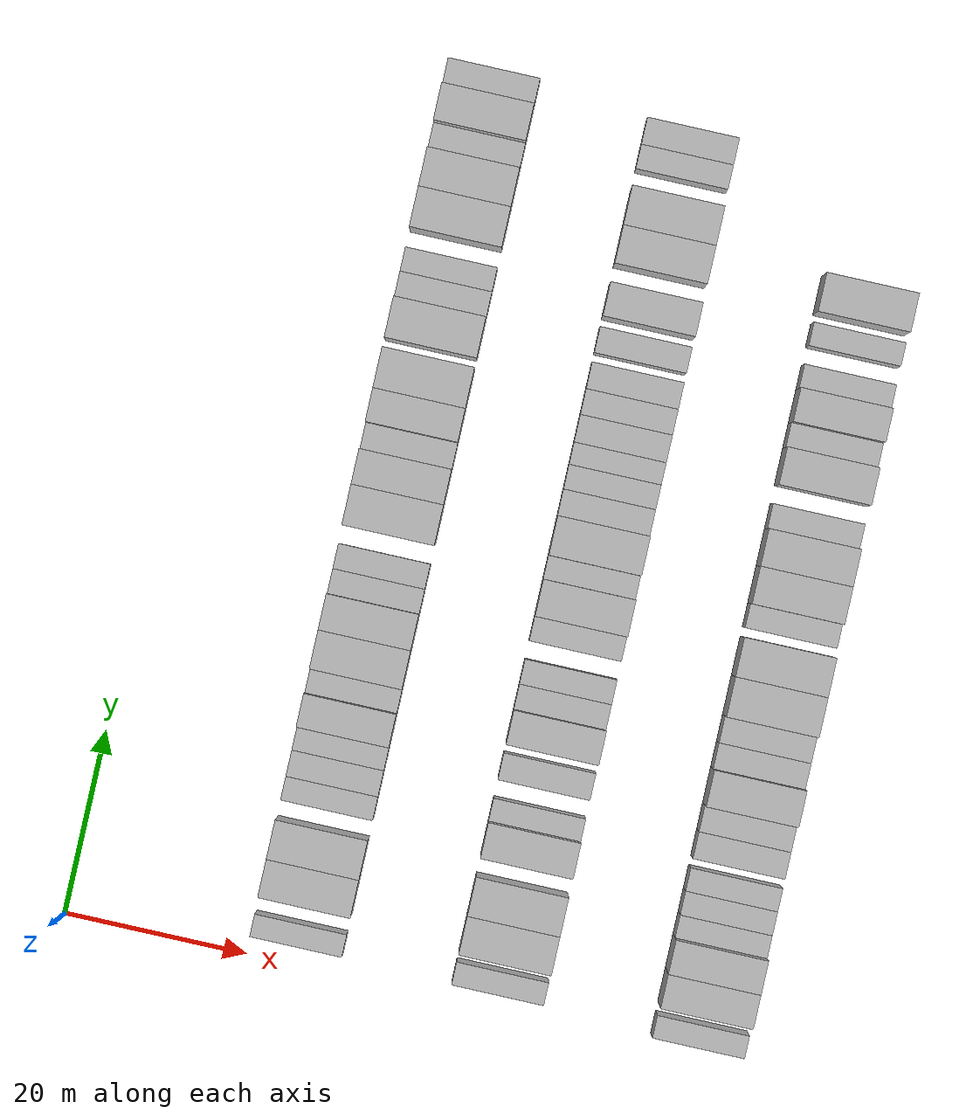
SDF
<sdf version="1.6">
 <world name="default">
  <model name="building_99">
   <static>1</static>
   <pose>25.0000 3.5961 0 0.000000 0.000000 0.000000</pose>
   <link name="link">
    <pose>0 0 3.00 0 0 0</pose>
    <collision name="collision"><geometry><box><size>10.0000 2.4489 6.0000</size></box></geometry></collision>
    <visual name="visual">
     <cast_shadows>0</cast_shadows>
     <geometry><box><size>10.0000 2.4489 6.0000</size></box></geometry>
     <material>
      <script>
       <uri>model://HANNAS_wall/materials/scripts</uri>
       <uri>model://HANNAS_wall/materials/textures</uri>
       <name>vrc/HANNAS_wall</name>
      </script>
     </material>
    </visual>
   </link>
  </model>
  <model name="building_100">
   <static>1</static>
   <pose>25.0000 8.8799 0 0.000000 0.000000 0.000000</pose>
   <link name="link">
    <pose>0 0 4.50 0 0 0</pose>
    <collision name="collision"><geometry><box><size>10.0000 4.1187 9.0000</size></box></geometry></collision>
    <visual name="visual">
     <cast_shadows>0</cast_shadows>
     <geometry><box><size>10.0000 4.1187 9.0000</size></box></geometry>
     <material>
      <script>
       <uri>model://HANNAS_wall/materials/scripts</uri>
       <uri>model://HANNAS_wall/materials/textures</uri>
       <name>vrc/HANNAS_wall</name>
      </script>
     </material>
    </visual>
   </link>
  </model>
  <model name="building_101">
   <static>1</static>
   <pose>25.0000 13.0749 0 0.000000 0.000000 0.000000</pose>
   <link name="link">
    <pose>0 0 4.50 0 0 0</pose>
    <collision name="collision"><geometry><box><size>10.0000 4.2711 9.0000</size></box></geometry></collision>
    <visual name="visual">
     <cast_shadows>0</cast_shadows>
     <geometry><box><size>10.0000 4.2711 9.0000</size></box></geometry>
     <material>
      <script>
       <uri>model://HANNAS_wall/materials/scripts</uri>
       <uri>model://HANNAS_wall/materials/textures</uri>
       <name>vrc/HANNAS_wall</name>
      </script>
     </material>
    </visual>
   </link>
  </model>
  <model name="building_102">
   <static>1</static>
   <pose>25.0000 18.4972 0 0.000000 0.000000 0.000000</pose>
   <link name="link">
    <pose>0 0 3.00 0 0 0</pose>
    <collision name="collision"><geometry><box><size>10.0000 2.5736 6.0000</size></box></geometry></collision>
    <visual name="visual">
     <cast_shadows>0</cast_shadows>
     <geometry><box><size>10.0000 2.5736 6.0000</size></box></geometry>
     <material>
      <script>
       <uri>model://HANNAS_wall/materials/scripts</uri>
       <uri>model://HANNAS_wall/materials/textures</uri>
       <name>vrc/HANNAS_wall</name>
      </script>
     </material>
    </visual>
   </link>
  </model>
  <model name="building_103">
   <static>1</static>
   <pose>25.0000 21.2080 0 0.000000 0.000000 0.000000</pose>
   <link name="link">
    <pose>0 0 3.00 0 0 0</pose>
    <collision name="collision"><geometry><box><size>10.0000 2.8479 6.0000</size></box></geometry></collision>
    <visual name="visual">
     <cast_shadows>0</cast_shadows>
     <geometry><box><size>10.0000 2.8479 6.0000</size></box></geometry>
     <material>
      <script>
       <uri>model://HANNAS_wall/materials/scripts</uri>
       <uri>model://HANNAS_wall/materials/textures</uri>
       <name>vrc/HANNAS_wall</name>
      </script>
     </material>
    </visual>
   </link>
  </model>
  <model name="building_104">
   <static>1</static>
   <pose>25.0000 23.9316 0 0.000000 0.000000 0.000000</pose>
   <link name="link">
    <pose>0 0 3.00 0 0 0</pose>
    <collision name="collision"><geometry><box><size>10.0000 2.5992 6.0000</size></box></geometry></collision>
    <visual name="visual">
     <cast_shadows>0</cast_shadows>
     <geometry><box><size>10.0000 2.5992 6.0000</size></box></geometry>
     <material>
      <script>
       <uri>model://HANNAS_wall/materials/scripts</uri>
       <uri>model://HANNAS_wall/materials/textures</uri>
       <name>vrc/HANNAS_wall</name>
      </script>
     </material>
    </visual>
   </link>
  </model>
  <model name="building_105">
   <static>1</static>
   <pose>25.0000 27.0450 0 0.000000 0.000000 0.000000</pose>
   <link name="link">
    <pose>0 0 4.50 0 0 0</pose>
    <collision name="collision"><geometry><box><size>10.0000 3.6277 9.0000</size></box></geometry></collision>
    <visual name="visual">
     <cast_shadows>0</cast_shadows>
     <geometry><box><size>10.0000 3.6277 9.0000</size></box></geometry>
     <material>
      <script>
       <uri>model://HANNAS_wall/materials/scripts</uri>
       <uri>model://HANNAS_wall/materials/textures</uri>
       <name>vrc/HANNAS_wall</name>
      </script>
     </material>
    </visual>
   </link>
  </model>
  <model name="building_106">
   <static>1</static>
   <pose>25.0000 30.1839 0 0.000000 0.000000 0.000000</pose>
   <link name="link">
    <pose>0 0 3.00 0 0 0</pose>
    <collision name="collision"><geometry><box><size>10.0000 2.6501 6.0000</size></box></geometry></collision>
    <visual name="visual">
     <cast_shadows>0</cast_shadows>
     <geometry><box><size>10.0000 2.6501 6.0000</size></box></geometry>
     <material>
      <script>
       <uri>model://HANNAS_wall/materials/scripts</uri>
       <uri>model://HANNAS_wall/materials/textures</uri>
       <name>vrc/HANNAS_wall</name>
      </script>
     </material>
    </visual>
   </link>
  </model>
  <model name="building_107">
   <static>1</static>
   <pose>25.0000 33.6156 0 0.000000 0.000000 0.000000</pose>
   <link name="link">
    <pose>0 0 4.50 0 0 0</pose>
    <collision name="collision"><geometry><box><size>10.0000 4.2131 9.0000</size></box></geometry></collision>
    <visual name="visual">
     <cast_shadows>0</cast_shadows>
     <geometry><box><size>10.0000 4.2131 9.0000</size></box></geometry>
     <material>
      <script>
       <uri>model://HANNAS_wall/materials/scripts</uri>
       <uri>model://HANNAS_wall/materials/textures</uri>
       <name>vrc/HANNAS_wall</name>
      </script>
     </material>
    </visual>
   </link>
  </model>
  <model name="building_108">
   <static>1</static>
   <pose>25.0000 37.6829 0 0.000000 0.000000 0.000000</pose>
   <link name="link">
    <pose>0 0 4.50 0 0 0</pose>
    <collision name="collision"><geometry><box><size>10.0000 3.9215 9.0000</size></box></geometry></collision>
    <visual name="visual">
     <cast_shadows>0</cast_shadows>
     <geometry><box><size>10.0000 3.9215 9.0000</size></box></geometry>
     <material>
      <script>
       <uri>model://HANNAS_wall/materials/scripts</uri>
       <uri>model://HANNAS_wall/materials/textures</uri>
       <name>vrc/HANNAS_wall</name>
      </script>
     </material>
    </visual>
   </link>
  </model>
  <model name="building_109">
   <static>1</static>
   <pose>25.0000 40.9921 0 0.000000 0.000000 0.000000</pose>
   <link name="link">
    <pose>0 0 3.00 0 0 0</pose>
    <collision name="collision"><geometry><box><size>10.0000 2.6969 6.0000</size></box></geometry></collision>
    <visual name="visual">
     <cast_shadows>0</cast_shadows>
     <geometry><box><size>10.0000 2.6969 6.0000</size></box></geometry>
     <material>
      <script>
       <uri>model://HANNAS_wall/materials/scripts</uri>
       <uri>model://HANNAS_wall/materials/textures</uri>
       <name>vrc/HANNAS_wall</name>
      </script>
     </material>
    </visual>
   </link>
  </model>
  <model name="building_110">
   <static>1</static>
   <pose>25.0000 43.7052 0 0.000000 0.000000 0.000000</pose>
   <link name="link">
    <pose>0 0 3.00 0 0 0</pose>
    <collision name="collision"><geometry><box><size>10.0000 2.7293 6.0000</size></box></geometry></collision>
    <visual name="visual">
     <cast_shadows>0</cast_shadows>
     <geometry><box><size>10.0000 2.7293 6.0000</size></box></geometry>
     <material>
      <script>
       <uri>model://HANNAS_wall/materials/scripts</uri>
       <uri>model://HANNAS_wall/materials/textures</uri>
       <name>vrc/HANNAS_wall</name>
      </script>
     </material>
    </visual>
   </link>
  </model>
  <model name="building_111">
   <static>1</static>
   <pose>25.0000 49.2758 0 0.000000 0.000000 0.000000</pose>
   <link name="link">
    <pose>0 0 4.50 0 0 0</pose>
    <collision name="collision"><geometry><box><size>10.0000 4.4118 9.0000</size></box></geometry></collision>
    <visual name="visual">
     <cast_shadows>0</cast_shadows>
     <geometry><box><size>10.0000 4.4118 9.0000</size></box></geometry>
     <material>
      <script>
       <uri>model://HANNAS_wall/materials/scripts</uri>
       <uri>model://HANNAS_wall/materials/textures</uri>
       <name>vrc/HANNAS_wall</name>
      </script>
     </material>
    </visual>
   </link>
  </model>
  <model name="building_112">
   <static>1</static>
   <pose>25.0000 53.4001 0 0.000000 0.000000 0.000000</pose>
   <link name="link">
    <pose>0 0 4.50 0 0 0</pose>
    <collision name="collision"><geometry><box><size>10.0000 3.8367 9.0000</size></box></geometry></collision>
    <visual name="visual">
     <cast_shadows>0</cast_shadows>
     <geometry><box><size>10.0000 3.8367 9.0000</size></box></geometry>
     <material>
      <script>
       <uri>model://HANNAS_wall/materials/scripts</uri>
       <uri>model://HANNAS_wall/materials/textures</uri>
       <name>vrc/HANNAS_wall</name>
      </script>
     </material>
    </visual>
   </link>
  </model>
  <model name="building_113">
   <static>1</static>
   <pose>25.0000 56.7736 0 0.000000 0.000000 0.000000</pose>
   <link name="link">
    <pose>0 0 3.00 0 0 0</pose>
    <collision name="collision"><geometry><box><size>10.0000 2.9103 6.0000</size></box></geometry></collision>
    <visual name="visual">
     <cast_shadows>0</cast_shadows>
     <geometry><box><size>10.0000 2.9103 6.0000</size></box></geometry>
     <material>
      <script>
       <uri>model://HANNAS_wall/materials/scripts</uri>
       <uri>model://HANNAS_wall/materials/textures</uri>
       <name>vrc/HANNAS_wall</name>
      </script>
     </material>
    </visual>
   </link>
  </model>
  <model name="building_114">
   <static>1</static>
   <pose>25.0000 60.0603 0 0.000000 0.000000 0.000000</pose>
   <link name="link">
    <pose>0 0 4.50 0 0 0</pose>
    <collision name="collision"><geometry><box><size>10.0000 3.6632 9.0000</size></box></geometry></collision>
    <visual name="visual">
     <cast_shadows>0</cast_shadows>
     <geometry><box><size>10.0000 3.6632 9.0000</size></box></geometry>
     <material>
      <script>
       <uri>model://HANNAS_wall/materials/scripts</uri>
       <uri>model://HANNAS_wall/materials/textures</uri>
       <name>vrc/HANNAS_wall</name>
      </script>
     </material>
    </visual>
   </link>
  </model>
  <model name="building_115">
   <static>1</static>
   <pose>25.0000 64.1115 0 0.000000 0.000000 0.000000</pose>
   <link name="link">
    <pose>0 0 4.50 0 0 0</pose>
    <collision name="collision"><geometry><box><size>10.0000 4.4391 9.0000</size></box></geometry></collision>
    <visual name="visual">
     <cast_shadows>0</cast_shadows>
     <geometry><box><size>10.0000 4.4391 9.0000</size></box></geometry>
     <material>
      <script>
       <uri>model://HANNAS_wall/materials/scripts</uri>
       <uri>model://HANNAS_wall/materials/textures</uri>
       <name>vrc/HANNAS_wall</name>
      </script>
     </material>
    </visual>
   </link>
  </model>
  <model name="building_116">
   <static>1</static>
   <pose>25.0000 69.5688 0 0.000000 0.000000 0.000000</pose>
   <link name="link">
    <pose>0 0 4.50 0 0 0</pose>
    <collision name="collision"><geometry><box><size>10.0000 4.4756 9.0000</size></box></geometry></collision>
    <visual name="visual">
     <cast_shadows>0</cast_shadows>
     <geometry><box><size>10.0000 4.4756 9.0000</size></box></geometry>
     <material>
      <script>
       <uri>model://HANNAS_wall/materials/scripts</uri>
       <uri>model://HANNAS_wall/materials/textures</uri>
       <name>vrc/HANNAS_wall</name>
      </script>
     </material>
    </visual>
   </link>
  </model>
  <model name="building_117">
   <static>1</static>
   <pose>25.0000 73.2288 0 0.000000 0.000000 0.000000</pose>
   <link name="link">
    <pose>0 0 3.00 0 0 0</pose>
    <collision name="collision"><geometry><box><size>10.0000 2.8444 6.0000</size></box></geometry></collision>
    <visual name="visual">
     <cast_shadows>0</cast_shadows>
     <geometry><box><size>10.0000 2.8444 6.0000</size></box></geometry>
     <material>
      <script>
       <uri>model://HANNAS_wall/materials/scripts</uri>
       <uri>model://HANNAS_wall/materials/textures</uri>
       <name>vrc/HANNAS_wall</name>
      </script>
     </material>
    </visual>
   </link>
  </model>
  <model name="building_118">
   <static>1</static>
   <pose>25.0000 75.9660 0 0.000000 0.000000 0.000000</pose>
   <link name="link">
    <pose>0 0 3.00 0 0 0</pose>
    <collision name="collision"><geometry><box><size>10.0000 2.6300 6.0000</size></box></geometry></collision>
    <visual name="visual">
     <cast_shadows>0</cast_shadows>
     <geometry><box><size>10.0000 2.6300 6.0000</size></box></geometry>
     <material>
      <script>
       <uri>model://HANNAS_wall/materials/scripts</uri>
       <uri>model://HANNAS_wall/materials/textures</uri>
       <name>vrc/HANNAS_wall</name>
      </script>
     </material>
    </visual>
   </link>
  </model>
  <model name="building_119">
   <static>1</static>
   <pose>25.0000 81.4776 0 0.000000 0.000000 0.000000</pose>
   <link name="link">
    <pose>0 0 4.50 0 0 0</pose>
    <collision name="collision"><geometry><box><size>10.0000 4.3931 9.0000</size></box></geometry></collision>
    <visual name="visual">
     <cast_shadows>0</cast_shadows>
     <geometry><box><size>10.0000 4.3931 9.0000</size></box></geometry>
     <material>
      <script>
       <uri>model://HANNAS_wall/materials/scripts</uri>
       <uri>model://HANNAS_wall/materials/textures</uri>
       <name>vrc/HANNAS_wall</name>
      </script>
     </material>
    </visual>
   </link>
  </model>
  <model name="building_120">
   <static>1</static>
   <pose>25.0000 85.7953 0 0.000000 0.000000 0.000000</pose>
   <link name="link">
    <pose>0 0 4.50 0 0 0</pose>
    <collision name="collision"><geometry><box><size>10.0000 4.2424 9.0000</size></box></geometry></collision>
    <visual name="visual">
     <cast_shadows>0</cast_shadows>
     <geometry><box><size>10.0000 4.2424 9.0000</size></box></geometry>
     <material>
      <script>
       <uri>model://HANNAS_wall/materials/scripts</uri>
       <uri>model://HANNAS_wall/materials/textures</uri>
       <name>vrc/HANNAS_wall</name>
      </script>
     </material>
    </visual>
   </link>
  </model>
  <model name="building_121">
   <static>1</static>
   <pose>25.0000 89.3578 0 0.000000 0.000000 0.000000</pose>
   <link name="link">
    <pose>0 0 3.00 0 0 0</pose>
    <collision name="collision"><geometry><box><size>10.0000 2.8826 6.0000</size></box></geometry></collision>
    <visual name="visual">
     <cast_shadows>0</cast_shadows>
     <geometry><box><size>10.0000 2.8826 6.0000</size></box></geometry>
     <material>
      <script>
       <uri>model://HANNAS_wall/materials/scripts</uri>
       <uri>model://HANNAS_wall/materials/textures</uri>
       <name>vrc/HANNAS_wall</name>
      </script>
     </material>
    </visual>
   </link>
  </model>
  <model name="building_122">
   <static>1</static>
   <pose>25.0000 92.8302 0 0.000000 0.000000 0.000000</pose>
   <link name="link">
    <pose>0 0 4.50 0 0 0</pose>
    <collision name="collision"><geometry><box><size>10.0000 4.0624 9.0000</size></box></geometry></collision>
    <visual name="visual">
     <cast_shadows>0</cast_shadows>
     <geometry><box><size>10.0000 4.0624 9.0000</size></box></geometry>
     <material>
      <script>
       <uri>model://HANNAS_wall/materials/scripts</uri>
       <uri>model://HANNAS_wall/materials/textures</uri>
       <name>vrc/HANNAS_wall</name>
      </script>
     </material>
    </visual>
   </link>
  </model>
  <model name="building_123">
   <static>1</static>
   <pose>25.0000 96.3478 0 0.000000 0.000000 0.000000</pose>
   <link name="link">
    <pose>0 0 3.00 0 0 0</pose>
    <collision name="collision"><geometry><box><size>10.0000 2.9729 6.0000</size></box></geometry></collision>
    <visual name="visual">
     <cast_shadows>0</cast_shadows>
     <geometry><box><size>10.0000 2.9729 6.0000</size></box></geometry>
     <material>
      <script>
       <uri>model://HANNAS_wall/materials/scripts</uri>
       <uri>model://HANNAS_wall/materials/textures</uri>
       <name>vrc/HANNAS_wall</name>
      </script>
     </material>
    </visual>
   </link>
  </model>
  <model name="building_291">
   <static>1</static>
   <pose>47.0000 3.3373 0 0.000000 0.000000 0.000000</pose>
   <link name="link">
    <pose>0 0 3.00 0 0 0</pose>
    <collision name="collision"><geometry><box><size>10.0000 2.4838 6.0000</size></box></geometry></collision>
    <visual name="visual">
     <cast_shadows>0</cast_shadows>
     <geometry><box><size>10.0000 2.4838 6.0000</size></box></geometry>
     <material>
      <script>
       <uri>model://HANNAS_wall/materials/scripts</uri>
       <uri>model://HANNAS_wall/materials/textures</uri>
       <name>vrc/HANNAS_wall</name>
      </script>
     </material>
    </visual>
   </link>
  </model>
  <model name="building_292">
   <static>1</static>
   <pose>47.0000 7.6718 0 0.000000 0.000000 0.000000</pose>
   <link name="link">
    <pose>0 0 4.50 0 0 0</pose>
    <collision name="collision"><geometry><box><size>10.0000 4.1853 9.0000</size></box></geometry></collision>
    <visual name="visual">
     <cast_shadows>0</cast_shadows>
     <geometry><box><size>10.0000 4.1853 9.0000</size></box></geometry>
     <material>
      <script>
       <uri>model://HANNAS_wall/materials/scripts</uri>
       <uri>model://HANNAS_wall/materials/textures</uri>
       <name>vrc/HANNAS_wall</name>
      </script>
     </material>
    </visual>
   </link>
  </model>
  <model name="building_293">
   <static>1</static>
   <pose>47.0000 11.8834 0 0.000000 0.000000 0.000000</pose>
   <link name="link">
    <pose>0 0 4.50 0 0 0</pose>
    <collision name="collision"><geometry><box><size>10.0000 4.2378 9.0000</size></box></geometry></collision>
    <visual name="visual">
     <cast_shadows>0</cast_shadows>
     <geometry><box><size>10.0000 4.2378 9.0000</size></box></geometry>
     <material>
      <script>
       <uri>model://HANNAS_wall/materials/scripts</uri>
       <uri>model://HANNAS_wall/materials/textures</uri>
       <name>vrc/HANNAS_wall</name>
      </script>
     </material>
    </visual>
   </link>
  </model>
  <model name="building_294">
   <static>1</static>
   <pose>47.0000 17.9451 0 0.000000 0.000000 0.000000</pose>
   <link name="link">
    <pose>0 0 4.50 0 0 0</pose>
    <collision name="collision"><geometry><box><size>10.0000 3.8855 9.0000</size></box></geometry></collision>
    <visual name="visual">
     <cast_shadows>0</cast_shadows>
     <geometry><box><size>10.0000 3.8855 9.0000</size></box></geometry>
     <material>
      <script>
       <uri>model://HANNAS_wall/materials/scripts</uri>
       <uri>model://HANNAS_wall/materials/textures</uri>
       <name>vrc/HANNAS_wall</name>
      </script>
     </material>
    </visual>
   </link>
  </model>
  <model name="building_295">
   <static>1</static>
   <pose>47.0000 21.1310 0 0.000000 0.000000 0.000000</pose>
   <link name="link">
    <pose>0 0 3.00 0 0 0</pose>
    <collision name="collision"><geometry><box><size>10.0000 2.4863 6.0000</size></box></geometry></collision>
    <visual name="visual">
     <cast_shadows>0</cast_shadows>
     <geometry><box><size>10.0000 2.4863 6.0000</size></box></geometry>
     <material>
      <script>
       <uri>model://HANNAS_wall/materials/scripts</uri>
       <uri>model://HANNAS_wall/materials/textures</uri>
       <name>vrc/HANNAS_wall</name>
      </script>
     </material>
    </visual>
   </link>
  </model>
  <model name="building_296">
   <static>1</static>
   <pose>47.0000 25.8357 0 0.000000 0.000000 0.000000</pose>
   <link name="link">
    <pose>0 0 3.00 0 0 0</pose>
    <collision name="collision"><geometry><box><size>10.0000 2.9231 6.0000</size></box></geometry></collision>
    <visual name="visual">
     <cast_shadows>0</cast_shadows>
     <geometry><box><size>10.0000 2.9231 6.0000</size></box></geometry>
     <material>
      <script>
       <uri>model://HANNAS_wall/materials/scripts</uri>
       <uri>model://HANNAS_wall/materials/textures</uri>
       <name>vrc/HANNAS_wall</name>
      </script>
     </material>
    </visual>
   </link>
  </model>
  <model name="building_297">
   <static>1</static>
   <pose>47.0000 30.1630 0 0.000000 0.000000 0.000000</pose>
   <link name="link">
    <pose>0 0 4.50 0 0 0</pose>
    <collision name="collision"><geometry><box><size>10.0000 3.7315 9.0000</size></box></geometry></collision>
    <visual name="visual">
     <cast_shadows>0</cast_shadows>
     <geometry><box><size>10.0000 3.7315 9.0000</size></box></geometry>
     <material>
      <script>
       <uri>model://HANNAS_wall/materials/scripts</uri>
       <uri>model://HANNAS_wall/materials/textures</uri>
       <name>vrc/HANNAS_wall</name>
      </script>
     </material>
    </visual>
   </link>
  </model>
  <model name="building_298">
   <static>1</static>
   <pose>47.0000 33.4005 0 0.000000 0.000000 0.000000</pose>
   <link name="link">
    <pose>0 0 3.00 0 0 0</pose>
    <collision name="collision"><geometry><box><size>10.0000 2.7434 6.0000</size></box></geometry></collision>
    <visual name="visual">
     <cast_shadows>0</cast_shadows>
     <geometry><box><size>10.0000 2.7434 6.0000</size></box></geometry>
     <material>
      <script>
       <uri>model://HANNAS_wall/materials/scripts</uri>
       <uri>model://HANNAS_wall/materials/textures</uri>
       <name>vrc/HANNAS_wall</name>
      </script>
     </material>
    </visual>
   </link>
  </model>
  <model name="building_299">
   <static>1</static>
   <pose>47.0000 36.1211 0 0.000000 0.000000 0.000000</pose>
   <link name="link">
    <pose>0 0 3.00 0 0 0</pose>
    <collision name="collision"><geometry><box><size>10.0000 2.6978 6.0000</size></box></geometry></collision>
    <visual name="visual">
     <cast_shadows>0</cast_shadows>
     <geometry><box><size>10.0000 2.6978 6.0000</size></box></geometry>
     <material>
      <script>
       <uri>model://HANNAS_wall/materials/scripts</uri>
       <uri>model://HANNAS_wall/materials/textures</uri>
       <name>vrc/HANNAS_wall</name>
      </script>
     </material>
    </visual>
   </link>
  </model>
  <model name="building_300">
   <static>1</static>
   <pose>47.0000 40.8157 0 0.000000 0.000000 0.000000</pose>
   <link name="link">
    <pose>0 0 3.00 0 0 0</pose>
    <collision name="collision"><geometry><box><size>10.0000 2.6915 6.0000</size></box></geometry></collision>
    <visual name="visual">
     <cast_shadows>0</cast_shadows>
     <geometry><box><size>10.0000 2.6915 6.0000</size></box></geometry>
     <material>
      <script>
       <uri>model://HANNAS_wall/materials/scripts</uri>
       <uri>model://HANNAS_wall/materials/textures</uri>
       <name>vrc/HANNAS_wall</name>
      </script>
     </material>
    </visual>
   </link>
  </model>
  <model name="building_301">
   <static>1</static>
   <pose>47.0000 44.1690 0 0.000000 0.000000 0.000000</pose>
   <link name="link">
    <pose>0 0 4.50 0 0 0</pose>
    <collision name="collision"><geometry><box><size>10.0000 4.0151 9.0000</size></box></geometry></collision>
    <visual name="visual">
     <cast_shadows>0</cast_shadows>
     <geometry><box><size>10.0000 4.0151 9.0000</size></box></geometry>
     <material>
      <script>
       <uri>model://HANNAS_wall/materials/scripts</uri>
       <uri>model://HANNAS_wall/materials/textures</uri>
       <name>vrc/HANNAS_wall</name>
      </script>
     </material>
    </visual>
   </link>
  </model>
  <model name="building_302">
   <static>1</static>
   <pose>47.0000 47.4665 0 0.000000 0.000000 0.000000</pose>
   <link name="link">
    <pose>0 0 3.00 0 0 0</pose>
    <collision name="collision"><geometry><box><size>10.0000 2.5798 6.0000</size></box></geometry></collision>
    <visual name="visual">
     <cast_shadows>0</cast_shadows>
     <geometry><box><size>10.0000 2.5798 6.0000</size></box></geometry>
     <material>
      <script>
       <uri>model://HANNAS_wall/materials/scripts</uri>
       <uri>model://HANNAS_wall/materials/textures</uri>
       <name>vrc/HANNAS_wall</name>
      </script>
     </material>
    </visual>
   </link>
  </model>
  <model name="building_303">
   <static>1</static>
   <pose>47.0000 50.9024 0 0.000000 0.000000 0.000000</pose>
   <link name="link">
    <pose>0 0 4.50 0 0 0</pose>
    <collision name="collision"><geometry><box><size>10.0000 4.2921 9.0000</size></box></geometry></collision>
    <visual name="visual">
     <cast_shadows>0</cast_shadows>
     <geometry><box><size>10.0000 4.2921 9.0000</size></box></geometry>
     <material>
      <script>
       <uri>model://HANNAS_wall/materials/scripts</uri>
       <uri>model://HANNAS_wall/materials/textures</uri>
       <name>vrc/HANNAS_wall</name>
      </script>
     </material>
    </visual>
   </link>
  </model>
  <model name="building_304">
   <static>1</static>
   <pose>47.0000 54.5028 0 0.000000 0.000000 0.000000</pose>
   <link name="link">
    <pose>0 0 3.00 0 0 0</pose>
    <collision name="collision"><geometry><box><size>10.0000 2.9087 6.0000</size></box></geometry></collision>
    <visual name="visual">
     <cast_shadows>0</cast_shadows>
     <geometry><box><size>10.0000 2.9087 6.0000</size></box></geometry>
     <material>
      <script>
       <uri>model://HANNAS_wall/materials/scripts</uri>
       <uri>model://HANNAS_wall/materials/textures</uri>
       <name>vrc/HANNAS_wall</name>
      </script>
     </material>
    </visual>
   </link>
  </model>
  <model name="building_305">
   <static>1</static>
   <pose>47.0000 57.2980 0 0.000000 0.000000 0.000000</pose>
   <link name="link">
    <pose>0 0 3.00 0 0 0</pose>
    <collision name="collision"><geometry><box><size>10.0000 2.6816 6.0000</size></box></geometry></collision>
    <visual name="visual">
     <cast_shadows>0</cast_shadows>
     <geometry><box><size>10.0000 2.6816 6.0000</size></box></geometry>
     <material>
      <script>
       <uri>model://HANNAS_wall/materials/scripts</uri>
       <uri>model://HANNAS_wall/materials/textures</uri>
       <name>vrc/HANNAS_wall</name>
      </script>
     </material>
    </visual>
   </link>
  </model>
  <model name="building_306">
   <static>1</static>
   <pose>47.0000 59.8510 0 0.000000 0.000000 0.000000</pose>
   <link name="link">
    <pose>0 0 3.00 0 0 0</pose>
    <collision name="collision"><geometry><box><size>10.0000 2.4244 6.0000</size></box></geometry></collision>
    <visual name="visual">
     <cast_shadows>0</cast_shadows>
     <geometry><box><size>10.0000 2.4244 6.0000</size></box></geometry>
     <material>
      <script>
       <uri>model://HANNAS_wall/materials/scripts</uri>
       <uri>model://HANNAS_wall/materials/textures</uri>
       <name>vrc/HANNAS_wall</name>
      </script>
     </material>
    </visual>
   </link>
  </model>
  <model name="building_307">
   <static>1</static>
   <pose>47.0000 62.5628 0 0.000000 0.000000 0.000000</pose>
   <link name="link">
    <pose>0 0 3.00 0 0 0</pose>
    <collision name="collision"><geometry><box><size>10.0000 2.9994 6.0000</size></box></geometry></collision>
    <visual name="visual">
     <cast_shadows>0</cast_shadows>
     <geometry><box><size>10.0000 2.9994 6.0000</size></box></geometry>
     <material>
      <script>
       <uri>model://HANNAS_wall/materials/scripts</uri>
       <uri>model://HANNAS_wall/materials/textures</uri>
       <name>vrc/HANNAS_wall</name>
      </script>
     </material>
    </visual>
   </link>
  </model>
  <model name="building_308">
   <static>1</static>
   <pose>47.0000 65.4623 0 0.000000 0.000000 0.000000</pose>
   <link name="link">
    <pose>0 0 3.00 0 0 0</pose>
    <collision name="collision"><geometry><box><size>10.0000 2.7996 6.0000</size></box></geometry></collision>
    <visual name="visual">
     <cast_shadows>0</cast_shadows>
     <geometry><box><size>10.0000 2.7996 6.0000</size></box></geometry>
     <material>
      <script>
       <uri>model://HANNAS_wall/materials/scripts</uri>
       <uri>model://HANNAS_wall/materials/textures</uri>
       <name>vrc/HANNAS_wall</name>
      </script>
     </material>
    </visual>
   </link>
  </model>
  <model name="building_309">
   <static>1</static>
   <pose>47.0000 68.3121 0 0.000000 0.000000 0.000000</pose>
   <link name="link">
    <pose>0 0 3.00 0 0 0</pose>
    <collision name="collision"><geometry><box><size>10.0000 2.9001 6.0000</size></box></geometry></collision>
    <visual name="visual">
     <cast_shadows>0</cast_shadows>
     <geometry><box><size>10.0000 2.9001 6.0000</size></box></geometry>
     <material>
      <script>
       <uri>model://HANNAS_wall/materials/scripts</uri>
       <uri>model://HANNAS_wall/materials/textures</uri>
       <name>vrc/HANNAS_wall</name>
      </script>
     </material>
    </visual>
   </link>
  </model>
  <model name="building_310">
   <static>1</static>
   <pose>47.0000 72.1836 0 0.000000 0.000000 0.000000</pose>
   <link name="link">
    <pose>0 0 3.00 0 0 0</pose>
    <collision name="collision"><geometry><box><size>10.0000 2.8429 6.0000</size></box></geometry></collision>
    <visual name="visual">
     <cast_shadows>0</cast_shadows>
     <geometry><box><size>10.0000 2.8429 6.0000</size></box></geometry>
     <material>
      <script>
       <uri>model://HANNAS_wall/materials/scripts</uri>
       <uri>model://HANNAS_wall/materials/textures</uri>
       <name>vrc/HANNAS_wall</name>
      </script>
     </material>
    </visual>
   </link>
  </model>
  <model name="building_311">
   <static>1</static>
   <pose>47.0000 76.4564 0 0.000000 0.000000 0.000000</pose>
   <link name="link">
    <pose>0 0 4.50 0 0 0</pose>
    <collision name="collision"><geometry><box><size>10.0000 3.7026 9.0000</size></box></geometry></collision>
    <visual name="visual">
     <cast_shadows>0</cast_shadows>
     <geometry><box><size>10.0000 3.7026 9.0000</size></box></geometry>
     <material>
      <script>
       <uri>model://HANNAS_wall/materials/scripts</uri>
       <uri>model://HANNAS_wall/materials/textures</uri>
       <name>vrc/HANNAS_wall</name>
      </script>
     </material>
    </visual>
   </link>
  </model>
  <model name="building_312">
   <static>1</static>
   <pose>47.0000 82.3826 0 0.000000 0.000000 0.000000</pose>
   <link name="link">
    <pose>0 0 4.50 0 0 0</pose>
    <collision name="collision"><geometry><box><size>10.0000 4.1498 9.0000</size></box></geometry></collision>
    <visual name="visual">
     <cast_shadows>0</cast_shadows>
     <geometry><box><size>10.0000 4.1498 9.0000</size></box></geometry>
     <material>
      <script>
       <uri>model://HANNAS_wall/materials/scripts</uri>
       <uri>model://HANNAS_wall/materials/textures</uri>
       <name>vrc/HANNAS_wall</name>
      </script>
     </material>
    </visual>
   </link>
  </model>
  <model name="building_313">
   <static>1</static>
   <pose>47.0000 86.5964 0 0.000000 0.000000 0.000000</pose>
   <link name="link">
    <pose>0 0 4.50 0 0 0</pose>
    <collision name="collision"><geometry><box><size>10.0000 4.2777 9.0000</size></box></geometry></collision>
    <visual name="visual">
     <cast_shadows>0</cast_shadows>
     <geometry><box><size>10.0000 4.2777 9.0000</size></box></geometry>
     <material>
      <script>
       <uri>model://HANNAS_wall/materials/scripts</uri>
       <uri>model://HANNAS_wall/materials/textures</uri>
       <name>vrc/HANNAS_wall</name>
      </script>
     </material>
    </visual>
   </link>
  </model>
  <model name="building_314">
   <static>1</static>
   <pose>47.0000 92.0678 0 0.000000 0.000000 0.000000</pose>
   <link name="link">
    <pose>0 0 3.00 0 0 0</pose>
    <collision name="collision"><geometry><box><size>10.0000 2.6651 6.0000</size></box></geometry></collision>
    <visual name="visual">
     <cast_shadows>0</cast_shadows>
     <geometry><box><size>10.0000 2.6651 6.0000</size></box></geometry>
     <material>
      <script>
       <uri>model://HANNAS_wall/materials/scripts</uri>
       <uri>model://HANNAS_wall/materials/textures</uri>
       <name>vrc/HANNAS_wall</name>
      </script>
     </material>
    </visual>
   </link>
  </model>
  <model name="building_315">
   <static>1</static>
   <pose>47.0000 94.8676 0 0.000000 0.000000 0.000000</pose>
   <link name="link">
    <pose>0 0 3.00 0 0 0</pose>
    <collision name="collision"><geometry><box><size>10.0000 2.9346 6.0000</size></box></geometry></collision>
    <visual name="visual">
     <cast_shadows>0</cast_shadows>
     <geometry><box><size>10.0000 2.9346 6.0000</size></box></geometry>
     <material>
      <script>
       <uri>model://HANNAS_wall/materials/scripts</uri>
       <uri>model://HANNAS_wall/materials/textures</uri>
       <name>vrc/HANNAS_wall</name>
      </script>
     </material>
    </visual>
   </link>
  </model>
  <model name="building_480">
   <static>1</static>
   <pose>69.0000 2.5263 0 0.000000 0.000000 0.000000</pose>
   <link name="link">
    <pose>0 0 3.00 0 0 0</pose>
    <collision name="collision"><geometry><box><size>10.0000 2.4610 6.0000</size></box></geometry></collision>
    <visual name="visual">
     <cast_shadows>0</cast_shadows>
     <geometry><box><size>10.0000 2.4610 6.0000</size></box></geometry>
     <material>
      <script>
       <uri>model://HANNAS_wall/materials/scripts</uri>
       <uri>model://HANNAS_wall/materials/textures</uri>
       <name>vrc/HANNAS_wall</name>
      </script>
     </material>
    </visual>
   </link>
  </model>
  <model name="building_481">
   <static>1</static>
   <pose>69.0000 6.6103 0 0.000000 0.000000 0.000000</pose>
   <link name="link">
    <pose>0 0 4.50 0 0 0</pose>
    <collision name="collision"><geometry><box><size>10.0000 3.7070 9.0000</size></box></geometry></collision>
    <visual name="visual">
     <cast_shadows>0</cast_shadows>
     <geometry><box><size>10.0000 3.7070 9.0000</size></box></geometry>
     <material>
      <script>
       <uri>model://HANNAS_wall/materials/scripts</uri>
       <uri>model://HANNAS_wall/materials/textures</uri>
       <name>vrc/HANNAS_wall</name>
      </script>
     </material>
    </visual>
   </link>
  </model>
  <model name="building_482">
   <static>1</static>
   <pose>69.0000 10.3157 0 0.000000 0.000000 0.000000</pose>
   <link name="link">
    <pose>0 0 4.50 0 0 0</pose>
    <collision name="collision"><geometry><box><size>10.0000 3.7038 9.0000</size></box></geometry></collision>
    <visual name="visual">
     <cast_shadows>0</cast_shadows>
     <geometry><box><size>10.0000 3.7038 9.0000</size></box></geometry>
     <material>
      <script>
       <uri>model://HANNAS_wall/materials/scripts</uri>
       <uri>model://HANNAS_wall/materials/textures</uri>
       <name>vrc/HANNAS_wall</name>
      </script>
     </material>
    </visual>
   </link>
  </model>
  <model name="building_483">
   <static>1</static>
   <pose>69.0000 13.4127 0 0.000000 0.000000 0.000000</pose>
   <link name="link">
    <pose>0 0 3.00 0 0 0</pose>
    <collision name="collision"><geometry><box><size>10.0000 2.4901 6.0000</size></box></geometry></collision>
    <visual name="visual">
     <cast_shadows>0</cast_shadows>
     <geometry><box><size>10.0000 2.4901 6.0000</size></box></geometry>
     <material>
      <script>
       <uri>model://HANNAS_wall/materials/scripts</uri>
       <uri>model://HANNAS_wall/materials/textures</uri>
       <name>vrc/HANNAS_wall</name>
      </script>
     </material>
    </visual>
   </link>
  </model>
  <model name="building_484">
   <static>1</static>
   <pose>69.0000 15.9551 0 0.000000 0.000000 0.000000</pose>
   <link name="link">
    <pose>0 0 3.00 0 0 0</pose>
    <collision name="collision"><geometry><box><size>10.0000 2.5948 6.0000</size></box></geometry></collision>
    <visual name="visual">
     <cast_shadows>0</cast_shadows>
     <geometry><box><size>10.0000 2.5948 6.0000</size></box></geometry>
     <material>
      <script>
       <uri>model://HANNAS_wall/materials/scripts</uri>
       <uri>model://HANNAS_wall/materials/textures</uri>
       <name>vrc/HANNAS_wall</name>
      </script>
     </material>
    </visual>
   </link>
  </model>
  <model name="building_485">
   <static>1</static>
   <pose>69.0000 18.5147 0 0.000000 0.000000 0.000000</pose>
   <link name="link">
    <pose>0 0 3.00 0 0 0</pose>
    <collision name="collision"><geometry><box><size>10.0000 2.5243 6.0000</size></box></geometry></collision>
    <visual name="visual">
     <cast_shadows>0</cast_shadows>
     <geometry><box><size>10.0000 2.5243 6.0000</size></box></geometry>
     <material>
      <script>
       <uri>model://HANNAS_wall/materials/scripts</uri>
       <uri>model://HANNAS_wall/materials/textures</uri>
       <name>vrc/HANNAS_wall</name>
      </script>
     </material>
    </visual>
   </link>
  </model>
  <model name="building_486">
   <static>1</static>
   <pose>69.0000 22.2406 0 0.000000 0.000000 0.000000</pose>
   <link name="link">
    <pose>0 0 3.00 0 0 0</pose>
    <collision name="collision"><geometry><box><size>10.0000 2.9277 6.0000</size></box></geometry></collision>
    <visual name="visual">
     <cast_shadows>0</cast_shadows>
     <geometry><box><size>10.0000 2.9277 6.0000</size></box></geometry>
     <material>
      <script>
       <uri>model://HANNAS_wall/materials/scripts</uri>
       <uri>model://HANNAS_wall/materials/textures</uri>
       <name>vrc/HANNAS_wall</name>
      </script>
     </material>
    </visual>
   </link>
  </model>
  <model name="building_487">
   <static>1</static>
   <pose>69.0000 25.1294 0 0.000000 0.000000 0.000000</pose>
   <link name="link">
    <pose>0 0 3.00 0 0 0</pose>
    <collision name="collision"><geometry><box><size>10.0000 2.8499 6.0000</size></box></geometry></collision>
    <visual name="visual">
     <cast_shadows>0</cast_shadows>
     <geometry><box><size>10.0000 2.8499 6.0000</size></box></geometry>
     <material>
      <script>
       <uri>model://HANNAS_wall/materials/scripts</uri>
       <uri>model://HANNAS_wall/materials/textures</uri>
       <name>vrc/HANNAS_wall</name>
      </script>
     </material>
    </visual>
   </link>
  </model>
  <model name="building_488">
   <static>1</static>
   <pose>69.0000 28.5386 0 0.000000 0.000000 0.000000</pose>
   <link name="link">
    <pose>0 0 4.50 0 0 0</pose>
    <collision name="collision"><geometry><box><size>10.0000 3.9685 9.0000</size></box></geometry></collision>
    <visual name="visual">
     <cast_shadows>0</cast_shadows>
     <geometry><box><size>10.0000 3.9685 9.0000</size></box></geometry>
     <material>
      <script>
       <uri>model://HANNAS_wall/materials/scripts</uri>
       <uri>model://HANNAS_wall/materials/textures</uri>
       <name>vrc/HANNAS_wall</name>
      </script>
     </material>
    </visual>
   </link>
  </model>
  <model name="building_489">
   <static>1</static>
   <pose>69.0000 31.9405 0 0.000000 0.000000 0.000000</pose>
   <link name="link">
    <pose>0 0 3.00 0 0 0</pose>
    <collision name="collision"><geometry><box><size>10.0000 2.8354 6.0000</size></box></geometry></collision>
    <visual name="visual">
     <cast_shadows>0</cast_shadows>
     <geometry><box><size>10.0000 2.8354 6.0000</size></box></geometry>
     <material>
      <script>
       <uri>model://HANNAS_wall/materials/scripts</uri>
       <uri>model://HANNAS_wall/materials/textures</uri>
       <name>vrc/HANNAS_wall</name>
      </script>
     </material>
    </visual>
   </link>
  </model>
  <model name="building_490">
   <static>1</static>
   <pose>69.0000 34.8055 0 0.000000 0.000000 0.000000</pose>
   <link name="link">
    <pose>0 0 3.00 0 0 0</pose>
    <collision name="collision"><geometry><box><size>10.0000 2.8947 6.0000</size></box></geometry></collision>
    <visual name="visual">
     <cast_shadows>0</cast_shadows>
     <geometry><box><size>10.0000 2.8947 6.0000</size></box></geometry>
     <material>
      <script>
       <uri>model://HANNAS_wall/materials/scripts</uri>
       <uri>model://HANNAS_wall/materials/textures</uri>
       <name>vrc/HANNAS_wall</name>
      </script>
     </material>
    </visual>
   </link>
  </model>
  <model name="building_491">
   <static>1</static>
   <pose>69.0000 38.4256 0 0.000000 0.000000 0.000000</pose>
   <link name="link">
    <pose>0 0 4.50 0 0 0</pose>
    <collision name="collision"><geometry><box><size>10.0000 4.3454 9.0000</size></box></geometry></collision>
    <visual name="visual">
     <cast_shadows>0</cast_shadows>
     <geometry><box><size>10.0000 4.3454 9.0000</size></box></geometry>
     <material>
      <script>
       <uri>model://HANNAS_wall/materials/scripts</uri>
       <uri>model://HANNAS_wall/materials/textures</uri>
       <name>vrc/HANNAS_wall</name>
      </script>
     </material>
    </visual>
   </link>
  </model>
  <model name="building_492">
   <static>1</static>
   <pose>69.0000 42.7313 0 0.000000 0.000000 0.000000</pose>
   <link name="link">
    <pose>0 0 4.50 0 0 0</pose>
    <collision name="collision"><geometry><box><size>10.0000 4.2661 9.0000</size></box></geometry></collision>
    <visual name="visual">
     <cast_shadows>0</cast_shadows>
     <geometry><box><size>10.0000 4.2661 9.0000</size></box></geometry>
     <material>
      <script>
       <uri>model://HANNAS_wall/materials/scripts</uri>
       <uri>model://HANNAS_wall/materials/textures</uri>
       <name>vrc/HANNAS_wall</name>
      </script>
     </material>
    </visual>
   </link>
  </model>
  <model name="building_493">
   <static>1</static>
   <pose>69.0000 47.1704 0 0.000000 0.000000 0.000000</pose>
   <link name="link">
    <pose>0 0 3.00 0 0 0</pose>
    <collision name="collision"><geometry><box><size>10.0000 2.6121 6.0000</size></box></geometry></collision>
    <visual name="visual">
     <cast_shadows>0</cast_shadows>
     <geometry><box><size>10.0000 2.6121 6.0000</size></box></geometry>
     <material>
      <script>
       <uri>model://HANNAS_wall/materials/scripts</uri>
       <uri>model://HANNAS_wall/materials/textures</uri>
       <name>vrc/HANNAS_wall</name>
      </script>
     </material>
    </visual>
   </link>
  </model>
  <model name="building_494">
   <static>1</static>
   <pose>69.0000 50.5144 0 0.000000 0.000000 0.000000</pose>
   <link name="link">
    <pose>0 0 4.50 0 0 0</pose>
    <collision name="collision"><geometry><box><size>10.0000 4.0758 9.0000</size></box></geometry></collision>
    <visual name="visual">
     <cast_shadows>0</cast_shadows>
     <geometry><box><size>10.0000 4.0758 9.0000</size></box></geometry>
     <material>
      <script>
       <uri>model://HANNAS_wall/materials/scripts</uri>
       <uri>model://HANNAS_wall/materials/textures</uri>
       <name>vrc/HANNAS_wall</name>
      </script>
     </material>
    </visual>
   </link>
  </model>
  <model name="building_495">
   <static>1</static>
   <pose>69.0000 54.5904 0 0.000000 0.000000 0.000000</pose>
   <link name="link">
    <pose>0 0 4.50 0 0 0</pose>
    <collision name="collision"><geometry><box><size>10.0000 4.0764 9.0000</size></box></geometry></collision>
    <visual name="visual">
     <cast_shadows>0</cast_shadows>
     <geometry><box><size>10.0000 4.0764 9.0000</size></box></geometry>
     <material>
      <script>
       <uri>model://HANNAS_wall/materials/scripts</uri>
       <uri>model://HANNAS_wall/materials/textures</uri>
       <name>vrc/HANNAS_wall</name>
      </script>
     </material>
    </visual>
   </link>
  </model>
  <model name="building_496">
   <static>1</static>
   <pose>69.0000 57.9898 0 0.000000 0.000000 0.000000</pose>
   <link name="link">
    <pose>0 0 3.00 0 0 0</pose>
    <collision name="collision"><geometry><box><size>10.0000 2.7224 6.0000</size></box></geometry></collision>
    <visual name="visual">
     <cast_shadows>0</cast_shadows>
     <geometry><box><size>10.0000 2.7224 6.0000</size></box></geometry>
     <material>
      <script>
       <uri>model://HANNAS_wall/materials/scripts</uri>
       <uri>model://HANNAS_wall/materials/textures</uri>
       <name>vrc/HANNAS_wall</name>
      </script>
     </material>
    </visual>
   </link>
  </model>
  <model name="building_497">
   <static>1</static>
   <pose>69.0000 63.4007 0 0.000000 0.000000 0.000000</pose>
   <link name="link">
    <pose>0 0 4.50 0 0 0</pose>
    <collision name="collision"><geometry><box><size>10.0000 4.0993 9.0000</size></box></geometry></collision>
    <visual name="visual">
     <cast_shadows>0</cast_shadows>
     <geometry><box><size>10.0000 4.0993 9.0000</size></box></geometry>
     <material>
      <script>
       <uri>model://HANNAS_wall/materials/scripts</uri>
       <uri>model://HANNAS_wall/materials/textures</uri>
       <name>vrc/HANNAS_wall</name>
      </script>
     </material>
    </visual>
   </link>
  </model>
  <model name="building_498">
   <static>1</static>
   <pose>69.0000 66.8033 0 0.000000 0.000000 0.000000</pose>
   <link name="link">
    <pose>0 0 3.00 0 0 0</pose>
    <collision name="collision"><geometry><box><size>10.0000 2.7059 6.0000</size></box></geometry></collision>
    <visual name="visual">
     <cast_shadows>0</cast_shadows>
     <geometry><box><size>10.0000 2.7059 6.0000</size></box></geometry>
     <material>
      <script>
       <uri>model://HANNAS_wall/materials/scripts</uri>
       <uri>model://HANNAS_wall/materials/textures</uri>
       <name>vrc/HANNAS_wall</name>
      </script>
     </material>
    </visual>
   </link>
  </model>
  <model name="building_499">
   <static>1</static>
   <pose>69.0000 70.0058 0 0.000000 0.000000 0.000000</pose>
   <link name="link">
    <pose>0 0 4.50 0 0 0</pose>
    <collision name="collision"><geometry><box><size>10.0000 3.6991 9.0000</size></box></geometry></collision>
    <visual name="visual">
     <cast_shadows>0</cast_shadows>
     <geometry><box><size>10.0000 3.6991 9.0000</size></box></geometry>
     <material>
      <script>
       <uri>model://HANNAS_wall/materials/scripts</uri>
       <uri>model://HANNAS_wall/materials/textures</uri>
       <name>vrc/HANNAS_wall</name>
      </script>
     </material>
    </visual>
   </link>
  </model>
  <model name="building_500">
   <static>1</static>
   <pose>69.0000 73.1774 0 0.000000 0.000000 0.000000</pose>
   <link name="link">
    <pose>0 0 3.00 0 0 0</pose>
    <collision name="collision"><geometry><box><size>10.0000 2.6441 6.0000</size></box></geometry></collision>
    <visual name="visual">
     <cast_shadows>0</cast_shadows>
     <geometry><box><size>10.0000 2.6441 6.0000</size></box></geometry>
     <material>
      <script>
       <uri>model://HANNAS_wall/materials/scripts</uri>
       <uri>model://HANNAS_wall/materials/textures</uri>
       <name>vrc/HANNAS_wall</name>
      </script>
     </material>
    </visual>
   </link>
  </model>
  <model name="building_501">
   <static>1</static>
   <pose>69.0000 77.7800 0 0.000000 0.000000 0.000000</pose>
   <link name="link">
    <pose>0 0 3.00 0 0 0</pose>
    <collision name="collision"><geometry><box><size>10.0000 2.5613 6.0000</size></box></geometry></collision>
    <visual name="visual">
     <cast_shadows>0</cast_shadows>
     <geometry><box><size>10.0000 2.5613 6.0000</size></box></geometry>
     <material>
      <script>
       <uri>model://HANNAS_wall/materials/scripts</uri>
       <uri>model://HANNAS_wall/materials/textures</uri>
       <name>vrc/HANNAS_wall</name>
      </script>
     </material>
    </visual>
   </link>
  </model>
  <model name="building_502">
   <static>1</static>
   <pose>69.0000 82.1696 0 0.000000 0.000000 0.000000</pose>
   <link name="link">
    <pose>0 0 4.50 0 0 0</pose>
    <collision name="collision"><geometry><box><size>10.0000 4.2179 9.0000</size></box></geometry></collision>
    <visual name="visual">
     <cast_shadows>0</cast_shadows>
     <geometry><box><size>10.0000 4.2179 9.0000</size></box></geometry>
     <material>
      <script>
       <uri>model://HANNAS_wall/materials/scripts</uri>
       <uri>model://HANNAS_wall/materials/textures</uri>
       <name>vrc/HANNAS_wall</name>
      </script>
     </material>
    </visual>
   </link>
  </model>
 </world>
</sdf>
